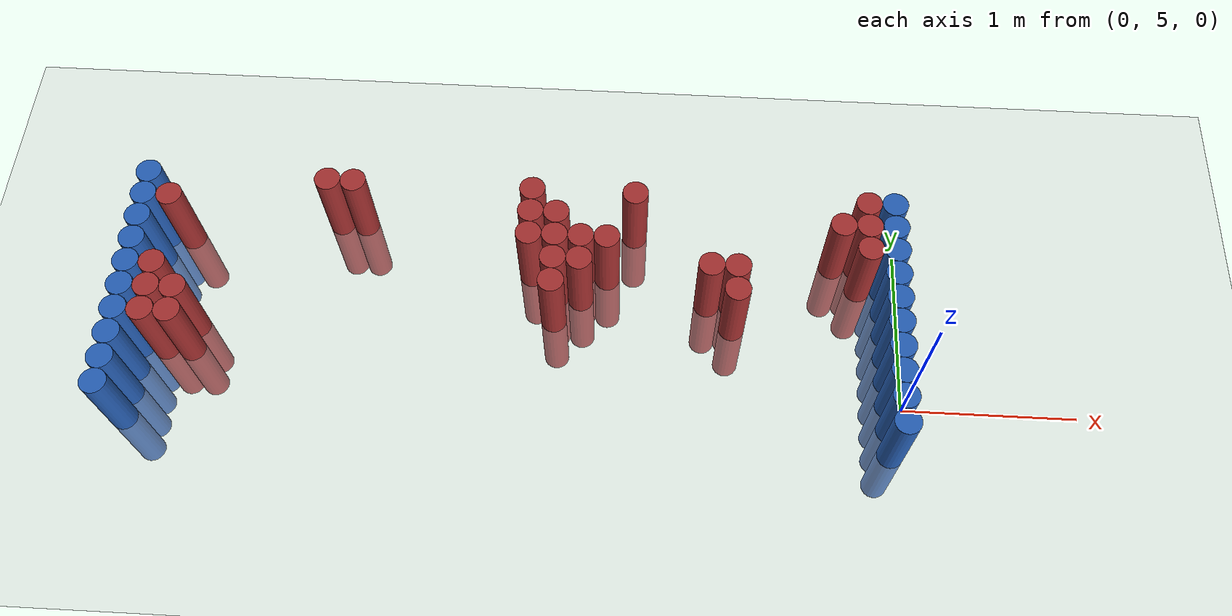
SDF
<sdf version="1.6">
 <world name="default">
  <model name="ground_plane">
   <static>1</static>
   <link name="link">
    <collision name="collision">
     <geometry><plane><normal>0 0 1</normal><size>100 100</size></plane></geometry>
     <surface><friction><ode><mu>100</mu><mu2>50</mu2></ode></friction></surface>
    </collision>
    <visual name="visual">
     <cast_shadows>0</cast_shadows>
     <geometry><plane><normal>0 0 1</normal><size>100 100</size></plane></geometry>
     <material>
      <script><uri>file://media/materials/scripts/gazebo.material</uri><name>Gazebo/Grey</name></script>
     </material>
    </visual>
   </link>
  </model>
  <model name="unit_cylinder_90">
   <static>1</static>
   <pose>-0.075000 4.725000 0.000000 0.000000 0.000000 0.000000</pose>
   <link name="link">
    <inertial>
     <mass>1</mass>
     <inertia><ixx>0.145833</ixx><ixy>0</ixy><ixz>0</ixz><iyy>0.145833</iyy><iyz>0</iyz><izz>0.125</izz></inertia>
    </inertial>
    <collision name="collision">
     <geometry><cylinder><radius>0.075000</radius><length>1</length></cylinder></geometry>
    </collision>
    <visual name="visual">
     <geometry><cylinder><radius>0.075000</radius><length>1</length></cylinder></geometry>
     <material>
      <ambient>0.152000 0.379000 0.720000 1</ambient>
      <diffuse>0.152000 0.379000 0.720000 1</diffuse>
     </material>
     <material>
      <script><name>Gazebo/Grey</name><uri>file://media/materials/scripts/gazebo.material</uri></script>
     </material>
    </visual>
   </link>
  </model>
  <model name="unit_cylinder_91">
   <static>1</static>
   <pose>-4.425000 4.725000 0.000000 0.000000 0.000000 0.000000</pose>
   <link name="link">
    <inertial>
     <mass>1</mass>
     <inertia><ixx>0.145833</ixx><ixy>0</ixy><ixz>0</ixz><iyy>0.145833</iyy><iyz>0</iyz><izz>0.125</izz></inertia>
    </inertial>
    <collision name="collision">
     <geometry><cylinder><radius>0.075000</radius><length>1</length></cylinder></geometry>
    </collision>
    <visual name="visual">
     <geometry><cylinder><radius>0.075000</radius><length>1</length></cylinder></geometry>
     <material>
      <ambient>0.152000 0.379000 0.720000 1</ambient>
      <diffuse>0.152000 0.379000 0.720000 1</diffuse>
     </material>
     <material>
      <script><name>Gazebo/Grey</name><uri>file://media/materials/scripts/gazebo.material</uri></script>
     </material>
    </visual>
   </link>
  </model>
  <model name="unit_cylinder_92">
   <static>1</static>
   <pose>-0.075000 4.875000 0.000000 0.000000 0.000000 0.000000</pose>
   <link name="link">
    <inertial>
     <mass>1</mass>
     <inertia><ixx>0.145833</ixx><ixy>0</ixy><ixz>0</ixz><iyy>0.145833</iyy><iyz>0</iyz><izz>0.125</izz></inertia>
    </inertial>
    <collision name="collision">
     <geometry><cylinder><radius>0.075000</radius><length>1</length></cylinder></geometry>
    </collision>
    <visual name="visual">
     <geometry><cylinder><radius>0.075000</radius><length>1</length></cylinder></geometry>
     <material>
      <ambient>0.152000 0.379000 0.720000 1</ambient>
      <diffuse>0.152000 0.379000 0.720000 1</diffuse>
     </material>
     <material>
      <script><name>Gazebo/Grey</name><uri>file://media/materials/scripts/gazebo.material</uri></script>
     </material>
    </visual>
   </link>
  </model>
  <model name="unit_cylinder_93">
   <static>1</static>
   <pose>-4.425000 4.875000 0.000000 0.000000 0.000000 0.000000</pose>
   <link name="link">
    <inertial>
     <mass>1</mass>
     <inertia><ixx>0.145833</ixx><ixy>0</ixy><ixz>0</ixz><iyy>0.145833</iyy><iyz>0</iyz><izz>0.125</izz></inertia>
    </inertial>
    <collision name="collision">
     <geometry><cylinder><radius>0.075000</radius><length>1</length></cylinder></geometry>
    </collision>
    <visual name="visual">
     <geometry><cylinder><radius>0.075000</radius><length>1</length></cylinder></geometry>
     <material>
      <ambient>0.152000 0.379000 0.720000 1</ambient>
      <diffuse>0.152000 0.379000 0.720000 1</diffuse>
     </material>
     <material>
      <script><name>Gazebo/Grey</name><uri>file://media/materials/scripts/gazebo.material</uri></script>
     </material>
    </visual>
   </link>
  </model>
  <model name="unit_cylinder_94">
   <static>1</static>
   <pose>-0.075000 5.025000 0.000000 0.000000 0.000000 0.000000</pose>
   <link name="link">
    <inertial>
     <mass>1</mass>
     <inertia><ixx>0.145833</ixx><ixy>0</ixy><ixz>0</ixz><iyy>0.145833</iyy><iyz>0</iyz><izz>0.125</izz></inertia>
    </inertial>
    <collision name="collision">
     <geometry><cylinder><radius>0.075000</radius><length>1</length></cylinder></geometry>
    </collision>
    <visual name="visual">
     <geometry><cylinder><radius>0.075000</radius><length>1</length></cylinder></geometry>
     <material>
      <ambient>0.152000 0.379000 0.720000 1</ambient>
      <diffuse>0.152000 0.379000 0.720000 1</diffuse>
     </material>
     <material>
      <script><name>Gazebo/Grey</name><uri>file://media/materials/scripts/gazebo.material</uri></script>
     </material>
    </visual>
   </link>
  </model>
  <model name="unit_cylinder_95">
   <static>1</static>
   <pose>-4.425000 5.025000 0.000000 0.000000 0.000000 0.000000</pose>
   <link name="link">
    <inertial>
     <mass>1</mass>
     <inertia><ixx>0.145833</ixx><ixy>0</ixy><ixz>0</ixz><iyy>0.145833</iyy><iyz>0</iyz><izz>0.125</izz></inertia>
    </inertial>
    <collision name="collision">
     <geometry><cylinder><radius>0.075000</radius><length>1</length></cylinder></geometry>
    </collision>
    <visual name="visual">
     <geometry><cylinder><radius>0.075000</radius><length>1</length></cylinder></geometry>
     <material>
      <ambient>0.152000 0.379000 0.720000 1</ambient>
      <diffuse>0.152000 0.379000 0.720000 1</diffuse>
     </material>
     <material>
      <script><name>Gazebo/Grey</name><uri>file://media/materials/scripts/gazebo.material</uri></script>
     </material>
    </visual>
   </link>
  </model>
  <model name="unit_cylinder_96">
   <static>1</static>
   <pose>-4.425000 5.175000 0.000000 0.000000 0.000000 0.000000</pose>
   <link name="link">
    <inertial>
     <mass>1</mass>
     <inertia><ixx>0.145833</ixx><ixy>0</ixy><ixz>0</ixz><iyy>0.145833</iyy><iyz>0</iyz><izz>0.125</izz></inertia>
    </inertial>
    <collision name="collision">
     <geometry><cylinder><radius>0.075000</radius><length>1</length></cylinder></geometry>
    </collision>
    <visual name="visual">
     <geometry><cylinder><radius>0.075000</radius><length>1</length></cylinder></geometry>
     <material>
      <ambient>0.152000 0.379000 0.720000 1</ambient>
      <diffuse>0.152000 0.379000 0.720000 1</diffuse>
     </material>
     <material>
      <script><name>Gazebo/Grey</name><uri>file://media/materials/scripts/gazebo.material</uri></script>
     </material>
    </visual>
   </link>
  </model>
  <model name="unit_cylinder_97">
   <static>1</static>
   <pose>-4.425000 5.325000 0.000000 0.000000 0.000000 0.000000</pose>
   <link name="link">
    <inertial>
     <mass>1</mass>
     <inertia><ixx>0.145833</ixx><ixy>0</ixy><ixz>0</ixz><iyy>0.145833</iyy><iyz>0</iyz><izz>0.125</izz></inertia>
    </inertial>
    <collision name="collision">
     <geometry><cylinder><radius>0.075000</radius><length>1</length></cylinder></geometry>
    </collision>
    <visual name="visual">
     <geometry><cylinder><radius>0.075000</radius><length>1</length></cylinder></geometry>
     <material>
      <ambient>0.152000 0.379000 0.720000 1</ambient>
      <diffuse>0.152000 0.379000 0.720000 1</diffuse>
     </material>
     <material>
      <script><name>Gazebo/Grey</name><uri>file://media/materials/scripts/gazebo.material</uri></script>
     </material>
    </visual>
   </link>
  </model>
  <model name="unit_cylinder_98">
   <static>1</static>
   <pose>-4.425000 5.475000 0.000000 0.000000 0.000000 0.000000</pose>
   <link name="link">
    <inertial>
     <mass>1</mass>
     <inertia><ixx>0.145833</ixx><ixy>0</ixy><ixz>0</ixz><iyy>0.145833</iyy><iyz>0</iyz><izz>0.125</izz></inertia>
    </inertial>
    <collision name="collision">
     <geometry><cylinder><radius>0.075000</radius><length>1</length></cylinder></geometry>
    </collision>
    <visual name="visual">
     <geometry><cylinder><radius>0.075000</radius><length>1</length></cylinder></geometry>
     <material>
      <ambient>0.152000 0.379000 0.720000 1</ambient>
      <diffuse>0.152000 0.379000 0.720000 1</diffuse>
     </material>
     <material>
      <script><name>Gazebo/Grey</name><uri>file://media/materials/scripts/gazebo.material</uri></script>
     </material>
    </visual>
   </link>
  </model>
  <model name="unit_cylinder_99">
   <static>1</static>
   <pose>-4.425000 5.625000 0.000000 0.000000 0.000000 0.000000</pose>
   <link name="link">
    <inertial>
     <mass>1</mass>
     <inertia><ixx>0.145833</ixx><ixy>0</ixy><ixz>0</ixz><iyy>0.145833</iyy><iyz>0</iyz><izz>0.125</izz></inertia>
    </inertial>
    <collision name="collision">
     <geometry><cylinder><radius>0.075000</radius><length>1</length></cylinder></geometry>
    </collision>
    <visual name="visual">
     <geometry><cylinder><radius>0.075000</radius><length>1</length></cylinder></geometry>
     <material>
      <ambient>0.152000 0.379000 0.720000 1</ambient>
      <diffuse>0.152000 0.379000 0.720000 1</diffuse>
     </material>
     <material>
      <script><name>Gazebo/Grey</name><uri>file://media/materials/scripts/gazebo.material</uri></script>
     </material>
    </visual>
   </link>
  </model>
  <model name="unit_cylinder_100">
   <static>1</static>
   <pose>-4.425000 5.775000 0.000000 0.000000 0.000000 0.000000</pose>
   <link name="link">
    <inertial>
     <mass>1</mass>
     <inertia><ixx>0.145833</ixx><ixy>0</ixy><ixz>0</ixz><iyy>0.145833</iyy><iyz>0</iyz><izz>0.125</izz></inertia>
    </inertial>
    <collision name="collision">
     <geometry><cylinder><radius>0.075000</radius><length>1</length></cylinder></geometry>
    </collision>
    <visual name="visual">
     <geometry><cylinder><radius>0.075000</radius><length>1</length></cylinder></geometry>
     <material>
      <ambient>0.152000 0.379000 0.720000 1</ambient>
      <diffuse>0.152000 0.379000 0.720000 1</diffuse>
     </material>
     <material>
      <script><name>Gazebo/Grey</name><uri>file://media/materials/scripts/gazebo.material</uri></script>
     </material>
    </visual>
   </link>
  </model>
  <model name="unit_cylinder_101">
   <static>1</static>
   <pose>-4.425000 5.925000 0.000000 0.000000 0.000000 0.000000</pose>
   <link name="link">
    <inertial>
     <mass>1</mass>
     <inertia><ixx>0.145833</ixx><ixy>0</ixy><ixz>0</ixz><iyy>0.145833</iyy><iyz>0</iyz><izz>0.125</izz></inertia>
    </inertial>
    <collision name="collision">
     <geometry><cylinder><radius>0.075000</radius><length>1</length></cylinder></geometry>
    </collision>
    <visual name="visual">
     <geometry><cylinder><radius>0.075000</radius><length>1</length></cylinder></geometry>
     <material>
      <ambient>0.152000 0.379000 0.720000 1</ambient>
      <diffuse>0.152000 0.379000 0.720000 1</diffuse>
     </material>
     <material>
      <script><name>Gazebo/Grey</name><uri>file://media/materials/scripts/gazebo.material</uri></script>
     </material>
    </visual>
   </link>
  </model>
  <model name="unit_cylinder_102">
   <static>1</static>
   <pose>-4.425000 6.075000 0.000000 0.000000 0.000000 0.000000</pose>
   <link name="link">
    <inertial>
     <mass>1</mass>
     <inertia><ixx>0.145833</ixx><ixy>0</ixy><ixz>0</ixz><iyy>0.145833</iyy><iyz>0</iyz><izz>0.125</izz></inertia>
    </inertial>
    <collision name="collision">
     <geometry><cylinder><radius>0.075000</radius><length>1</length></cylinder></geometry>
    </collision>
    <visual name="visual">
     <geometry><cylinder><radius>0.075000</radius><length>1</length></cylinder></geometry>
     <material>
      <ambient>0.152000 0.379000 0.720000 1</ambient>
      <diffuse>0.152000 0.379000 0.720000 1</diffuse>
     </material>
     <material>
      <script><name>Gazebo/Grey</name><uri>file://media/materials/scripts/gazebo.material</uri></script>
     </material>
    </visual>
   </link>
  </model>
  <model name="unit_cylinder_126">
   <static>1</static>
   <pose>-4.275000 5.175000 0.000000 0.000000 0.000000 0.000000</pose>
   <link name="link">
    <inertial>
     <mass>1</mass>
     <inertia><ixx>0.145833</ixx><ixy>0</ixy><ixz>0</ixz><iyy>0.145833</iyy><iyz>0</iyz><izz>0.125</izz></inertia>
    </inertial>
    <collision name="collision">
     <geometry><cylinder><radius>0.075000</radius><length>1</length></cylinder></geometry>
    </collision>
    <visual name="visual">
     <geometry><cylinder><radius>0.075000</radius><length>1</length></cylinder></geometry>
     <material>
      <ambient>0.648000 0.192000 0.192000 1</ambient>
      <diffuse>0.648000 0.192000 0.192000 1</diffuse>
     </material>
     <material>
      <script><name>Gazebo/Grey</name><uri>file://media/materials/scripts/gazebo.material</uri></script>
     </material>
    </visual>
   </link>
  </model>
  <model name="unit_cylinder_127">
   <static>1</static>
   <pose>-4.275000 5.325000 0.000000 0.000000 0.000000 0.000000</pose>
   <link name="link">
    <inertial>
     <mass>1</mass>
     <inertia><ixx>0.145833</ixx><ixy>0</ixy><ixz>0</ixz><iyy>0.145833</iyy><iyz>0</iyz><izz>0.125</izz></inertia>
    </inertial>
    <collision name="collision">
     <geometry><cylinder><radius>0.075000</radius><length>1</length></cylinder></geometry>
    </collision>
    <visual name="visual">
     <geometry><cylinder><radius>0.075000</radius><length>1</length></cylinder></geometry>
     <material>
      <ambient>0.648000 0.192000 0.192000 1</ambient>
      <diffuse>0.648000 0.192000 0.192000 1</diffuse>
     </material>
     <material>
      <script><name>Gazebo/Grey</name><uri>file://media/materials/scripts/gazebo.material</uri></script>
     </material>
    </visual>
   </link>
  </model>
  <model name="unit_cylinder_128">
   <static>1</static>
   <pose>-4.275000 5.475000 0.000000 0.000000 0.000000 0.000000</pose>
   <link name="link">
    <inertial>
     <mass>1</mass>
     <inertia><ixx>0.145833</ixx><ixy>0</ixy><ixz>0</ixz><iyy>0.145833</iyy><iyz>0</iyz><izz>0.125</izz></inertia>
    </inertial>
    <collision name="collision">
     <geometry><cylinder><radius>0.075000</radius><length>1</length></cylinder></geometry>
    </collision>
    <visual name="visual">
     <geometry><cylinder><radius>0.075000</radius><length>1</length></cylinder></geometry>
     <material>
      <ambient>0.648000 0.192000 0.192000 1</ambient>
      <diffuse>0.648000 0.192000 0.192000 1</diffuse>
     </material>
     <material>
      <script><name>Gazebo/Grey</name><uri>file://media/materials/scripts/gazebo.material</uri></script>
     </material>
    </visual>
   </link>
  </model>
  <model name="unit_cylinder_129">
   <static>1</static>
   <pose>-4.275000 5.925000 0.000000 0.000000 0.000000 0.000000</pose>
   <link name="link">
    <inertial>
     <mass>1</mass>
     <inertia><ixx>0.145833</ixx><ixy>0</ixy><ixz>0</ixz><iyy>0.145833</iyy><iyz>0</iyz><izz>0.125</izz></inertia>
    </inertial>
    <collision name="collision">
     <geometry><cylinder><radius>0.075000</radius><length>1</length></cylinder></geometry>
    </collision>
    <visual name="visual">
     <geometry><cylinder><radius>0.075000</radius><length>1</length></cylinder></geometry>
     <material>
      <ambient>0.648000 0.192000 0.192000 1</ambient>
      <diffuse>0.648000 0.192000 0.192000 1</diffuse>
     </material>
     <material>
      <script><name>Gazebo/Grey</name><uri>file://media/materials/scripts/gazebo.material</uri></script>
     </material>
    </visual>
   </link>
  </model>
  <model name="unit_cylinder_141">
   <static>1</static>
   <pose>-4.125000 5.175000 0.000000 0.000000 0.000000 0.000000</pose>
   <link name="link">
    <inertial>
     <mass>1</mass>
     <inertia><ixx>0.145833</ixx><ixy>0</ixy><ixz>0</ixz><iyy>0.145833</iyy><iyz>0</iyz><izz>0.125</izz></inertia>
    </inertial>
    <collision name="collision">
     <geometry><cylinder><radius>0.075000</radius><length>1</length></cylinder></geometry>
    </collision>
    <visual name="visual">
     <geometry><cylinder><radius>0.075000</radius><length>1</length></cylinder></geometry>
     <material>
      <ambient>0.648000 0.192000 0.192000 1</ambient>
      <diffuse>0.648000 0.192000 0.192000 1</diffuse>
     </material>
     <material>
      <script><name>Gazebo/Grey</name><uri>file://media/materials/scripts/gazebo.material</uri></script>
     </material>
    </visual>
   </link>
  </model>
  <model name="unit_cylinder_142">
   <static>1</static>
   <pose>-4.125000 5.325000 0.000000 0.000000 0.000000 0.000000</pose>
   <link name="link">
    <inertial>
     <mass>1</mass>
     <inertia><ixx>0.145833</ixx><ixy>0</ixy><ixz>0</ixz><iyy>0.145833</iyy><iyz>0</iyz><izz>0.125</izz></inertia>
    </inertial>
    <collision name="collision">
     <geometry><cylinder><radius>0.075000</radius><length>1</length></cylinder></geometry>
    </collision>
    <visual name="visual">
     <geometry><cylinder><radius>0.075000</radius><length>1</length></cylinder></geometry>
     <material>
      <ambient>0.648000 0.192000 0.192000 1</ambient>
      <diffuse>0.648000 0.192000 0.192000 1</diffuse>
     </material>
     <material>
      <script><name>Gazebo/Grey</name><uri>file://media/materials/scripts/gazebo.material</uri></script>
     </material>
    </visual>
   </link>
  </model>
  <model name="unit_cylinder_145">
   <static>1</static>
   <pose>-3.375000 6.075000 0.000000 0.000000 0.000000 0.000000</pose>
   <link name="link">
    <inertial>
     <mass>1</mass>
     <inertia><ixx>0.145833</ixx><ixy>0</ixy><ixz>0</ixz><iyy>0.145833</iyy><iyz>0</iyz><izz>0.125</izz></inertia>
    </inertial>
    <collision name="collision">
     <geometry><cylinder><radius>0.075000</radius><length>1</length></cylinder></geometry>
    </collision>
    <visual name="visual">
     <geometry><cylinder><radius>0.075000</radius><length>1</length></cylinder></geometry>
     <material>
      <ambient>0.648000 0.192000 0.192000 1</ambient>
      <diffuse>0.648000 0.192000 0.192000 1</diffuse>
     </material>
     <material>
      <script><name>Gazebo/Grey</name><uri>file://media/materials/scripts/gazebo.material</uri></script>
     </material>
    </visual>
   </link>
  </model>
  <model name="unit_cylinder_149">
   <static>1</static>
   <pose>-3.225000 6.075000 0.000000 0.000000 0.000000 0.000000</pose>
   <link name="link">
    <inertial>
     <mass>1</mass>
     <inertia><ixx>0.145833</ixx><ixy>0</ixy><ixz>0</ixz><iyy>0.145833</iyy><iyz>0</iyz><izz>0.125</izz></inertia>
    </inertial>
    <collision name="collision">
     <geometry><cylinder><radius>0.075000</radius><length>1</length></cylinder></geometry>
    </collision>
    <visual name="visual">
     <geometry><cylinder><radius>0.075000</radius><length>1</length></cylinder></geometry>
     <material>
      <ambient>0.648000 0.192000 0.192000 1</ambient>
      <diffuse>0.648000 0.192000 0.192000 1</diffuse>
     </material>
     <material>
      <script><name>Gazebo/Grey</name><uri>file://media/materials/scripts/gazebo.material</uri></script>
     </material>
    </visual>
   </link>
  </model>
  <model name="unit_cylinder_155">
   <static>1</static>
   <pose>-2.175000 5.775000 0.000000 0.000000 0.000000 0.000000</pose>
   <link name="link">
    <inertial>
     <mass>1</mass>
     <inertia><ixx>0.145833</ixx><ixy>0</ixy><ixz>0</ixz><iyy>0.145833</iyy><iyz>0</iyz><izz>0.125</izz></inertia>
    </inertial>
    <collision name="collision">
     <geometry><cylinder><radius>0.075000</radius><length>1</length></cylinder></geometry>
    </collision>
    <visual name="visual">
     <geometry><cylinder><radius>0.075000</radius><length>1</length></cylinder></geometry>
     <material>
      <ambient>0.648000 0.192000 0.192000 1</ambient>
      <diffuse>0.648000 0.192000 0.192000 1</diffuse>
     </material>
     <material>
      <script><name>Gazebo/Grey</name><uri>file://media/materials/scripts/gazebo.material</uri></script>
     </material>
    </visual>
   </link>
  </model>
  <model name="unit_cylinder_156">
   <static>1</static>
   <pose>-2.175000 5.925000 0.000000 0.000000 0.000000 0.000000</pose>
   <link name="link">
    <inertial>
     <mass>1</mass>
     <inertia><ixx>0.145833</ixx><ixy>0</ixy><ixz>0</ixz><iyy>0.145833</iyy><iyz>0</iyz><izz>0.125</izz></inertia>
    </inertial>
    <collision name="collision">
     <geometry><cylinder><radius>0.075000</radius><length>1</length></cylinder></geometry>
    </collision>
    <visual name="visual">
     <geometry><cylinder><radius>0.075000</radius><length>1</length></cylinder></geometry>
     <material>
      <ambient>0.648000 0.192000 0.192000 1</ambient>
      <diffuse>0.648000 0.192000 0.192000 1</diffuse>
     </material>
     <material>
      <script><name>Gazebo/Grey</name><uri>file://media/materials/scripts/gazebo.material</uri></script>
     </material>
    </visual>
   </link>
  </model>
  <model name="unit_cylinder_157">
   <static>1</static>
   <pose>-2.175000 6.075000 0.000000 0.000000 0.000000 0.000000</pose>
   <link name="link">
    <inertial>
     <mass>1</mass>
     <inertia><ixx>0.145833</ixx><ixy>0</ixy><ixz>0</ixz><iyy>0.145833</iyy><iyz>0</iyz><izz>0.125</izz></inertia>
    </inertial>
    <collision name="collision">
     <geometry><cylinder><radius>0.075000</radius><length>1</length></cylinder></geometry>
    </collision>
    <visual name="visual">
     <geometry><cylinder><radius>0.075000</radius><length>1</length></cylinder></geometry>
     <material>
      <ambient>0.648000 0.192000 0.192000 1</ambient>
      <diffuse>0.648000 0.192000 0.192000 1</diffuse>
     </material>
     <material>
      <script><name>Gazebo/Grey</name><uri>file://media/materials/scripts/gazebo.material</uri></script>
     </material>
    </visual>
   </link>
  </model>
  <model name="unit_cylinder_160">
   <static>1</static>
   <pose>-2.025000 5.475000 0.000000 0.000000 0.000000 0.000000</pose>
   <link name="link">
    <inertial>
     <mass>1</mass>
     <inertia><ixx>0.145833</ixx><ixy>0</ixy><ixz>0</ixz><iyy>0.145833</iyy><iyz>0</iyz><izz>0.125</izz></inertia>
    </inertial>
    <collision name="collision">
     <geometry><cylinder><radius>0.075000</radius><length>1</length></cylinder></geometry>
    </collision>
    <visual name="visual">
     <geometry><cylinder><radius>0.075000</radius><length>1</length></cylinder></geometry>
     <material>
      <ambient>0.648000 0.192000 0.192000 1</ambient>
      <diffuse>0.648000 0.192000 0.192000 1</diffuse>
     </material>
     <material>
      <script><name>Gazebo/Grey</name><uri>file://media/materials/scripts/gazebo.material</uri></script>
     </material>
    </visual>
   </link>
  </model>
  <model name="unit_cylinder_161">
   <static>1</static>
   <pose>-2.025000 5.625000 0.000000 0.000000 0.000000 0.000000</pose>
   <link name="link">
    <inertial>
     <mass>1</mass>
     <inertia><ixx>0.145833</ixx><ixy>0</ixy><ixz>0</ixz><iyy>0.145833</iyy><iyz>0</iyz><izz>0.125</izz></inertia>
    </inertial>
    <collision name="collision">
     <geometry><cylinder><radius>0.075000</radius><length>1</length></cylinder></geometry>
    </collision>
    <visual name="visual">
     <geometry><cylinder><radius>0.075000</radius><length>1</length></cylinder></geometry>
     <material>
      <ambient>0.648000 0.192000 0.192000 1</ambient>
      <diffuse>0.648000 0.192000 0.192000 1</diffuse>
     </material>
     <material>
      <script><name>Gazebo/Grey</name><uri>file://media/materials/scripts/gazebo.material</uri></script>
     </material>
    </visual>
   </link>
  </model>
  <model name="unit_cylinder_162">
   <static>1</static>
   <pose>-2.025000 5.775000 0.000000 0.000000 0.000000 0.000000</pose>
   <link name="link">
    <inertial>
     <mass>1</mass>
     <inertia><ixx>0.145833</ixx><ixy>0</ixy><ixz>0</ixz><iyy>0.145833</iyy><iyz>0</iyz><izz>0.125</izz></inertia>
    </inertial>
    <collision name="collision">
     <geometry><cylinder><radius>0.075000</radius><length>1</length></cylinder></geometry>
    </collision>
    <visual name="visual">
     <geometry><cylinder><radius>0.075000</radius><length>1</length></cylinder></geometry>
     <material>
      <ambient>0.648000 0.192000 0.192000 1</ambient>
      <diffuse>0.648000 0.192000 0.192000 1</diffuse>
     </material>
     <material>
      <script><name>Gazebo/Grey</name><uri>file://media/materials/scripts/gazebo.material</uri></script>
     </material>
    </visual>
   </link>
  </model>
  <model name="unit_cylinder_163">
   <static>1</static>
   <pose>-2.025000 5.925000 0.000000 0.000000 0.000000 0.000000</pose>
   <link name="link">
    <inertial>
     <mass>1</mass>
     <inertia><ixx>0.145833</ixx><ixy>0</ixy><ixz>0</ixz><iyy>0.145833</iyy><iyz>0</iyz><izz>0.125</izz></inertia>
    </inertial>
    <collision name="collision">
     <geometry><cylinder><radius>0.075000</radius><length>1</length></cylinder></geometry>
    </collision>
    <visual name="visual">
     <geometry><cylinder><radius>0.075000</radius><length>1</length></cylinder></geometry>
     <material>
      <ambient>0.648000 0.192000 0.192000 1</ambient>
      <diffuse>0.648000 0.192000 0.192000 1</diffuse>
     </material>
     <material>
      <script><name>Gazebo/Grey</name><uri>file://media/materials/scripts/gazebo.material</uri></script>
     </material>
    </visual>
   </link>
  </model>
  <model name="unit_cylinder_166">
   <static>1</static>
   <pose>-1.875000 5.625000 0.000000 0.000000 0.000000 0.000000</pose>
   <link name="link">
    <inertial>
     <mass>1</mass>
     <inertia><ixx>0.145833</ixx><ixy>0</ixy><ixz>0</ixz><iyy>0.145833</iyy><iyz>0</iyz><izz>0.125</izz></inertia>
    </inertial>
    <collision name="collision">
     <geometry><cylinder><radius>0.075000</radius><length>1</length></cylinder></geometry>
    </collision>
    <visual name="visual">
     <geometry><cylinder><radius>0.075000</radius><length>1</length></cylinder></geometry>
     <material>
      <ambient>0.648000 0.192000 0.192000 1</ambient>
      <diffuse>0.648000 0.192000 0.192000 1</diffuse>
     </material>
     <material>
      <script><name>Gazebo/Grey</name><uri>file://media/materials/scripts/gazebo.material</uri></script>
     </material>
    </visual>
   </link>
  </model>
  <model name="unit_cylinder_167">
   <static>1</static>
   <pose>-1.875000 5.775000 0.000000 0.000000 0.000000 0.000000</pose>
   <link name="link">
    <inertial>
     <mass>1</mass>
     <inertia><ixx>0.145833</ixx><ixy>0</ixy><ixz>0</ixz><iyy>0.145833</iyy><iyz>0</iyz><izz>0.125</izz></inertia>
    </inertial>
    <collision name="collision">
     <geometry><cylinder><radius>0.075000</radius><length>1</length></cylinder></geometry>
    </collision>
    <visual name="visual">
     <geometry><cylinder><radius>0.075000</radius><length>1</length></cylinder></geometry>
     <material>
      <ambient>0.648000 0.192000 0.192000 1</ambient>
      <diffuse>0.648000 0.192000 0.192000 1</diffuse>
     </material>
     <material>
      <script><name>Gazebo/Grey</name><uri>file://media/materials/scripts/gazebo.material</uri></script>
     </material>
    </visual>
   </link>
  </model>
  <model name="unit_cylinder_170">
   <static>1</static>
   <pose>-1.725000 5.775000 0.000000 0.000000 0.000000 0.000000</pose>
   <link name="link">
    <inertial>
     <mass>1</mass>
     <inertia><ixx>0.145833</ixx><ixy>0</ixy><ixz>0</ixz><iyy>0.145833</iyy><iyz>0</iyz><izz>0.125</izz></inertia>
    </inertial>
    <collision name="collision">
     <geometry><cylinder><radius>0.075000</radius><length>1</length></cylinder></geometry>
    </collision>
    <visual name="visual">
     <geometry><cylinder><radius>0.075000</radius><length>1</length></cylinder></geometry>
     <material>
      <ambient>0.648000 0.192000 0.192000 1</ambient>
      <diffuse>0.648000 0.192000 0.192000 1</diffuse>
     </material>
     <material>
      <script><name>Gazebo/Grey</name><uri>file://media/materials/scripts/gazebo.material</uri></script>
     </material>
    </visual>
   </link>
  </model>
  <model name="unit_cylinder_174">
   <static>1</static>
   <pose>-1.575000 6.075000 0.000000 0.000000 0.000000 0.000000</pose>
   <link name="link">
    <inertial>
     <mass>1</mass>
     <inertia><ixx>0.145833</ixx><ixy>0</ixy><ixz>0</ixz><iyy>0.145833</iyy><iyz>0</iyz><izz>0.125</izz></inertia>
    </inertial>
    <collision name="collision">
     <geometry><cylinder><radius>0.075000</radius><length>1</length></cylinder></geometry>
    </collision>
    <visual name="visual">
     <geometry><cylinder><radius>0.075000</radius><length>1</length></cylinder></geometry>
     <material>
      <ambient>0.648000 0.192000 0.192000 1</ambient>
      <diffuse>0.648000 0.192000 0.192000 1</diffuse>
     </material>
     <material>
      <script><name>Gazebo/Grey</name><uri>file://media/materials/scripts/gazebo.material</uri></script>
     </material>
    </visual>
   </link>
  </model>
  <model name="unit_cylinder_179">
   <static>1</static>
   <pose>-1.125000 5.625000 0.000000 0.000000 0.000000 0.000000</pose>
   <link name="link">
    <inertial>
     <mass>1</mass>
     <inertia><ixx>0.145833</ixx><ixy>0</ixy><ixz>0</ixz><iyy>0.145833</iyy><iyz>0</iyz><izz>0.125</izz></inertia>
    </inertial>
    <collision name="collision">
     <geometry><cylinder><radius>0.075000</radius><length>1</length></cylinder></geometry>
    </collision>
    <visual name="visual">
     <geometry><cylinder><radius>0.075000</radius><length>1</length></cylinder></geometry>
     <material>
      <ambient>0.648000 0.192000 0.192000 1</ambient>
      <diffuse>0.648000 0.192000 0.192000 1</diffuse>
     </material>
     <material>
      <script><name>Gazebo/Grey</name><uri>file://media/materials/scripts/gazebo.material</uri></script>
     </material>
    </visual>
   </link>
  </model>
  <model name="unit_cylinder_180">
   <static>1</static>
   <pose>-0.975000 5.475000 0.000000 0.000000 0.000000 0.000000</pose>
   <link name="link">
    <inertial>
     <mass>1</mass>
     <inertia><ixx>0.145833</ixx><ixy>0</ixy><ixz>0</ixz><iyy>0.145833</iyy><iyz>0</iyz><izz>0.125</izz></inertia>
    </inertial>
    <collision name="collision">
     <geometry><cylinder><radius>0.075000</radius><length>1</length></cylinder></geometry>
    </collision>
    <visual name="visual">
     <geometry><cylinder><radius>0.075000</radius><length>1</length></cylinder></geometry>
     <material>
      <ambient>0.648000 0.192000 0.192000 1</ambient>
      <diffuse>0.648000 0.192000 0.192000 1</diffuse>
     </material>
     <material>
      <script><name>Gazebo/Grey</name><uri>file://media/materials/scripts/gazebo.material</uri></script>
     </material>
    </visual>
   </link>
  </model>
  <model name="unit_cylinder_181">
   <static>1</static>
   <pose>-0.975000 5.625000 0.000000 0.000000 0.000000 0.000000</pose>
   <link name="link">
    <inertial>
     <mass>1</mass>
     <inertia><ixx>0.145833</ixx><ixy>0</ixy><ixz>0</ixz><iyy>0.145833</iyy><iyz>0</iyz><izz>0.125</izz></inertia>
    </inertial>
    <collision name="collision">
     <geometry><cylinder><radius>0.075000</radius><length>1</length></cylinder></geometry>
    </collision>
    <visual name="visual">
     <geometry><cylinder><radius>0.075000</radius><length>1</length></cylinder></geometry>
     <material>
      <ambient>0.648000 0.192000 0.192000 1</ambient>
      <diffuse>0.648000 0.192000 0.192000 1</diffuse>
     </material>
     <material>
      <script><name>Gazebo/Grey</name><uri>file://media/materials/scripts/gazebo.material</uri></script>
     </material>
    </visual>
   </link>
  </model>
  <model name="unit_cylinder_186">
   <static>1</static>
   <pose>-0.375000 5.925000 0.000000 0.000000 0.000000 0.000000</pose>
   <link name="link">
    <inertial>
     <mass>1</mass>
     <inertia><ixx>0.145833</ixx><ixy>0</ixy><ixz>0</ixz><iyy>0.145833</iyy><iyz>0</iyz><izz>0.125</izz></inertia>
    </inertial>
    <collision name="collision">
     <geometry><cylinder><radius>0.075000</radius><length>1</length></cylinder></geometry>
    </collision>
    <visual name="visual">
     <geometry><cylinder><radius>0.075000</radius><length>1</length></cylinder></geometry>
     <material>
      <ambient>0.648000 0.192000 0.192000 1</ambient>
      <diffuse>0.648000 0.192000 0.192000 1</diffuse>
     </material>
     <material>
      <script><name>Gazebo/Grey</name><uri>file://media/materials/scripts/gazebo.material</uri></script>
     </material>
    </visual>
   </link>
  </model>
  <model name="unit_cylinder_188">
   <static>1</static>
   <pose>-0.225000 5.775000 0.000000 0.000000 0.000000 0.000000</pose>
   <link name="link">
    <inertial>
     <mass>1</mass>
     <inertia><ixx>0.145833</ixx><ixy>0</ixy><ixz>0</ixz><iyy>0.145833</iyy><iyz>0</iyz><izz>0.125</izz></inertia>
    </inertial>
    <collision name="collision">
     <geometry><cylinder><radius>0.075000</radius><length>1</length></cylinder></geometry>
    </collision>
    <visual name="visual">
     <geometry><cylinder><radius>0.075000</radius><length>1</length></cylinder></geometry>
     <material>
      <ambient>0.648000 0.192000 0.192000 1</ambient>
      <diffuse>0.648000 0.192000 0.192000 1</diffuse>
     </material>
     <material>
      <script><name>Gazebo/Grey</name><uri>file://media/materials/scripts/gazebo.material</uri></script>
     </material>
    </visual>
   </link>
  </model>
  <model name="unit_cylinder_189">
   <static>1</static>
   <pose>-0.225000 5.925000 0.000000 0.000000 0.000000 0.000000</pose>
   <link name="link">
    <inertial>
     <mass>1</mass>
     <inertia><ixx>0.145833</ixx><ixy>0</ixy><ixz>0</ixz><iyy>0.145833</iyy><iyz>0</iyz><izz>0.125</izz></inertia>
    </inertial>
    <collision name="collision">
     <geometry><cylinder><radius>0.075000</radius><length>1</length></cylinder></geometry>
    </collision>
    <visual name="visual">
     <geometry><cylinder><radius>0.075000</radius><length>1</length></cylinder></geometry>
     <material>
      <ambient>0.648000 0.192000 0.192000 1</ambient>
      <diffuse>0.648000 0.192000 0.192000 1</diffuse>
     </material>
     <material>
      <script><name>Gazebo/Grey</name><uri>file://media/materials/scripts/gazebo.material</uri></script>
     </material>
    </visual>
   </link>
  </model>
  <model name="unit_cylinder_190">
   <static>1</static>
   <pose>-0.225000 6.075000 0.000000 0.000000 0.000000 0.000000</pose>
   <link name="link">
    <inertial>
     <mass>1</mass>
     <inertia><ixx>0.145833</ixx><ixy>0</ixy><ixz>0</ixz><iyy>0.145833</iyy><iyz>0</iyz><izz>0.125</izz></inertia>
    </inertial>
    <collision name="collision">
     <geometry><cylinder><radius>0.075000</radius><length>1</length></cylinder></geometry>
    </collision>
    <visual name="visual">
     <geometry><cylinder><radius>0.075000</radius><length>1</length></cylinder></geometry>
     <material>
      <ambient>0.648000 0.192000 0.192000 1</ambient>
      <diffuse>0.648000 0.192000 0.192000 1</diffuse>
     </material>
     <material>
      <script><name>Gazebo/Grey</name><uri>file://media/materials/scripts/gazebo.material</uri></script>
     </material>
    </visual>
   </link>
  </model>
  <model name="unit_cylinder_197">
   <static>1</static>
   <pose>-0.075000 5.175000 0.000000 0.000000 0.000000 0.000000</pose>
   <link name="link">
    <inertial>
     <mass>1</mass>
     <inertia><ixx>0.145833</ixx><ixy>0</ixy><ixz>0</ixz><iyy>0.145833</iyy><iyz>0</iyz><izz>0.125</izz></inertia>
    </inertial>
    <collision name="collision">
     <geometry><cylinder><radius>0.075000</radius><length>1</length></cylinder></geometry>
    </collision>
    <visual name="visual">
     <geometry><cylinder><radius>0.075000</radius><length>1</length></cylinder></geometry>
     <material>
      <ambient>0.152000 0.379000 0.720000 1</ambient>
      <diffuse>0.152000 0.379000 0.720000 1</diffuse>
     </material>
     <material>
      <script><name>Gazebo/Grey</name><uri>file://media/materials/scripts/gazebo.material</uri></script>
     </material>
    </visual>
   </link>
  </model>
  <model name="unit_cylinder_198">
   <static>1</static>
   <pose>-0.075000 5.325000 0.000000 0.000000 0.000000 0.000000</pose>
   <link name="link">
    <inertial>
     <mass>1</mass>
     <inertia><ixx>0.145833</ixx><ixy>0</ixy><ixz>0</ixz><iyy>0.145833</iyy><iyz>0</iyz><izz>0.125</izz></inertia>
    </inertial>
    <collision name="collision">
     <geometry><cylinder><radius>0.075000</radius><length>1</length></cylinder></geometry>
    </collision>
    <visual name="visual">
     <geometry><cylinder><radius>0.075000</radius><length>1</length></cylinder></geometry>
     <material>
      <ambient>0.152000 0.379000 0.720000 1</ambient>
      <diffuse>0.152000 0.379000 0.720000 1</diffuse>
     </material>
     <material>
      <script><name>Gazebo/Grey</name><uri>file://media/materials/scripts/gazebo.material</uri></script>
     </material>
    </visual>
   </link>
  </model>
  <model name="unit_cylinder_199">
   <static>1</static>
   <pose>-0.075000 5.475000 0.000000 0.000000 0.000000 0.000000</pose>
   <link name="link">
    <inertial>
     <mass>1</mass>
     <inertia><ixx>0.145833</ixx><ixy>0</ixy><ixz>0</ixz><iyy>0.145833</iyy><iyz>0</iyz><izz>0.125</izz></inertia>
    </inertial>
    <collision name="collision">
     <geometry><cylinder><radius>0.075000</radius><length>1</length></cylinder></geometry>
    </collision>
    <visual name="visual">
     <geometry><cylinder><radius>0.075000</radius><length>1</length></cylinder></geometry>
     <material>
      <ambient>0.152000 0.379000 0.720000 1</ambient>
      <diffuse>0.152000 0.379000 0.720000 1</diffuse>
     </material>
     <material>
      <script><name>Gazebo/Grey</name><uri>file://media/materials/scripts/gazebo.material</uri></script>
     </material>
    </visual>
   </link>
  </model>
  <model name="unit_cylinder_200">
   <static>1</static>
   <pose>-0.075000 5.625000 0.000000 0.000000 0.000000 0.000000</pose>
   <link name="link">
    <inertial>
     <mass>1</mass>
     <inertia><ixx>0.145833</ixx><ixy>0</ixy><ixz>0</ixz><iyy>0.145833</iyy><iyz>0</iyz><izz>0.125</izz></inertia>
    </inertial>
    <collision name="collision">
     <geometry><cylinder><radius>0.075000</radius><length>1</length></cylinder></geometry>
    </collision>
    <visual name="visual">
     <geometry><cylinder><radius>0.075000</radius><length>1</length></cylinder></geometry>
     <material>
      <ambient>0.152000 0.379000 0.720000 1</ambient>
      <diffuse>0.152000 0.379000 0.720000 1</diffuse>
     </material>
     <material>
      <script><name>Gazebo/Grey</name><uri>file://media/materials/scripts/gazebo.material</uri></script>
     </material>
    </visual>
   </link>
  </model>
  <model name="unit_cylinder_201">
   <static>1</static>
   <pose>-0.075000 5.775000 0.000000 0.000000 0.000000 0.000000</pose>
   <link name="link">
    <inertial>
     <mass>1</mass>
     <inertia><ixx>0.145833</ixx><ixy>0</ixy><ixz>0</ixz><iyy>0.145833</iyy><iyz>0</iyz><izz>0.125</izz></inertia>
    </inertial>
    <collision name="collision">
     <geometry><cylinder><radius>0.075000</radius><length>1</length></cylinder></geometry>
    </collision>
    <visual name="visual">
     <geometry><cylinder><radius>0.075000</radius><length>1</length></cylinder></geometry>
     <material>
      <ambient>0.152000 0.379000 0.720000 1</ambient>
      <diffuse>0.152000 0.379000 0.720000 1</diffuse>
     </material>
     <material>
      <script><name>Gazebo/Grey</name><uri>file://media/materials/scripts/gazebo.material</uri></script>
     </material>
    </visual>
   </link>
  </model>
  <model name="unit_cylinder_202">
   <static>1</static>
   <pose>-0.075000 5.925000 0.000000 0.000000 0.000000 0.000000</pose>
   <link name="link">
    <inertial>
     <mass>1</mass>
     <inertia><ixx>0.145833</ixx><ixy>0</ixy><ixz>0</ixz><iyy>0.145833</iyy><iyz>0</iyz><izz>0.125</izz></inertia>
    </inertial>
    <collision name="collision">
     <geometry><cylinder><radius>0.075000</radius><length>1</length></cylinder></geometry>
    </collision>
    <visual name="visual">
     <geometry><cylinder><radius>0.075000</radius><length>1</length></cylinder></geometry>
     <material>
      <ambient>0.152000 0.379000 0.720000 1</ambient>
      <diffuse>0.152000 0.379000 0.720000 1</diffuse>
     </material>
     <material>
      <script><name>Gazebo/Grey</name><uri>file://media/materials/scripts/gazebo.material</uri></script>
     </material>
    </visual>
   </link>
  </model>
  <model name="unit_cylinder_203">
   <static>1</static>
   <pose>-0.075000 6.075000 0.000000 0.000000 0.000000 0.000000</pose>
   <link name="link">
    <inertial>
     <mass>1</mass>
     <inertia><ixx>0.145833</ixx><ixy>0</ixy><ixz>0</ixz><iyy>0.145833</iyy><iyz>0</iyz><izz>0.125</izz></inertia>
    </inertial>
    <collision name="collision">
     <geometry><cylinder><radius>0.075000</radius><length>1</length></cylinder></geometry>
    </collision>
    <visual name="visual">
     <geometry><cylinder><radius>0.075000</radius><length>1</length></cylinder></geometry>
     <material>
      <ambient>0.152000 0.379000 0.720000 1</ambient>
      <diffuse>0.152000 0.379000 0.720000 1</diffuse>
     </material>
     <material>
      <script><name>Gazebo/Grey</name><uri>file://media/materials/scripts/gazebo.material</uri></script>
     </material>
    </visual>
   </link>
  </model>
 </world>
</sdf>
